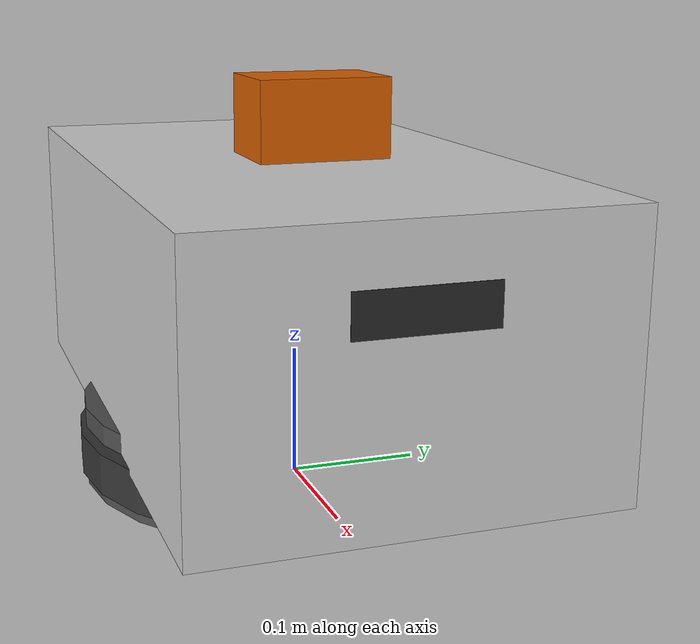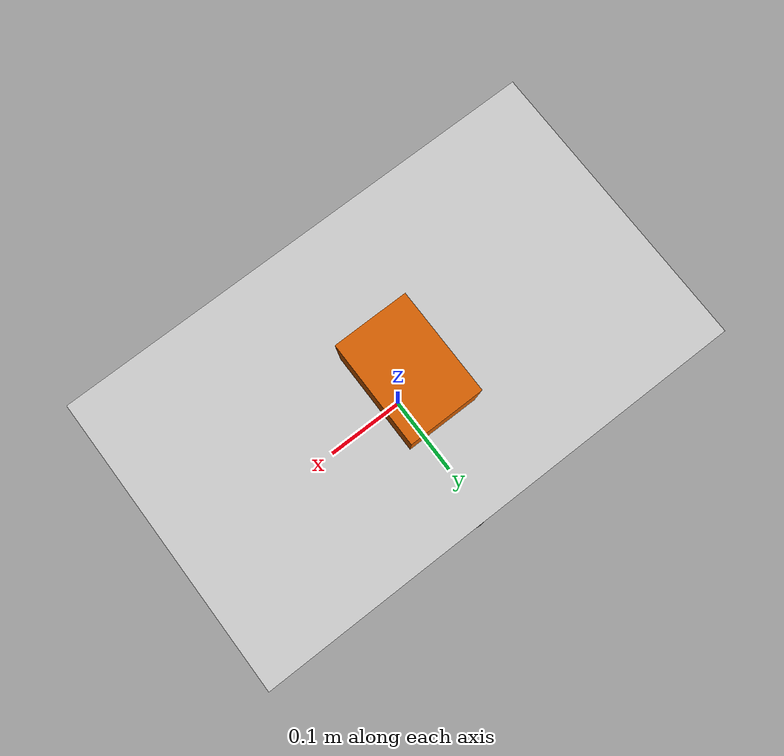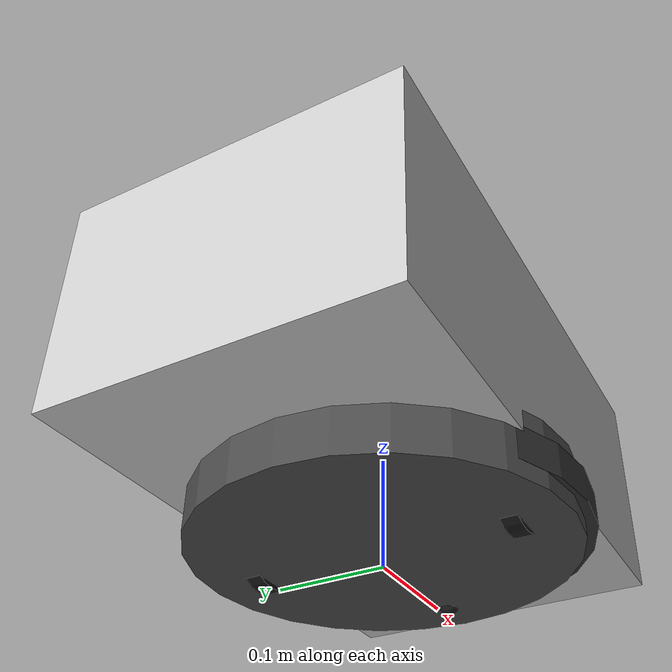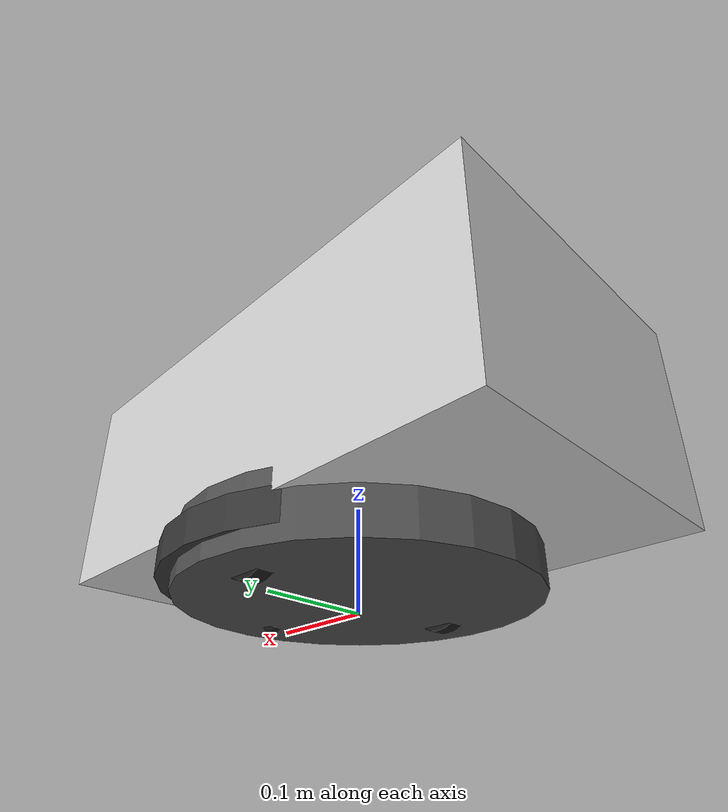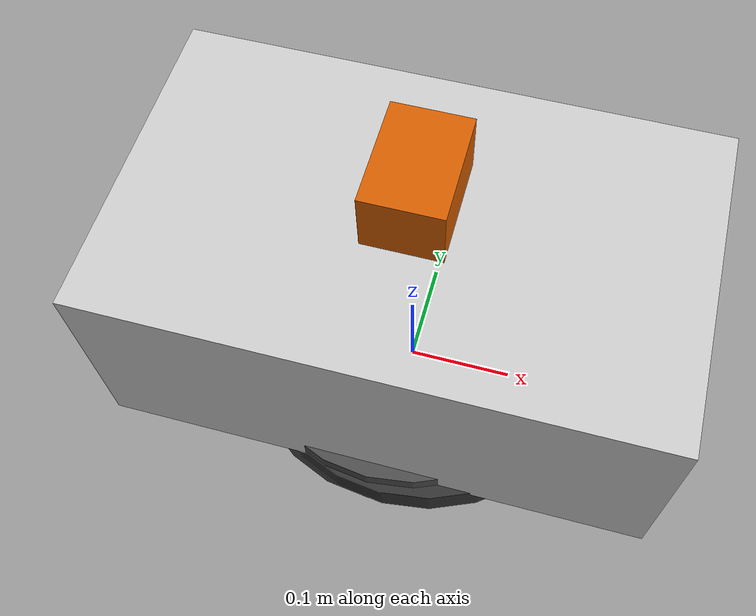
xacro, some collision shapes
<?xml version="1.0" ?>
<robot name="turtlebot4" xmlns:xacro="http://ros.org/wiki/xacro">
  <xacro:include filename="$(find nav2_minimal_tb4_description)/urdf/icreate/create3.urdf.xacro" />
  <xacro:include filename="$(find nav2_minimal_tb4_description)/urdf/sensors/rplidar.urdf.xacro" />
  <xacro:include filename="$(find nav2_minimal_tb4_description)/urdf/sensors/oakd.urdf.xacro" />
  <joint name="base_footprint_joint" type="fixed">
    <parent link="base_link"/>
    <child link="base_footprint"/>
    <origin xyz="0 0 0" rpy="0 0 0"/>
  </joint>
  <link name="base_footprint"/>

  <link name="chassis_link">
    <visual>
      <geometry>
        <box size="0.5 0.3 0.2"/>
      </geometry>
      <material name="light_grey">
        <color rgba="0.8 0.8 0.8 1.0"/>
      </material>
    </visual>
    <collision>
      <geometry>
        <box size="0.5 0.3 0.2"/>
      </geometry>
    </collision>
    <inertial>
      <mass value="15.0"/>
      <origin xyz="0 0 0" rpy="0 0 0"/>
      <inertia ixx="0.1625" ixy="0.0" ixz="0.0"
               iyy="0.3625" iyz="0.0"
               izz="0.425" />
    </inertial>

  </link>

  <joint name="chassis_joint" type="fixed">
    <parent link="base_link"/>
    <child link="chassis_link"/>
    <origin xyz="0 0 0.15" rpy="0 0 0"/>
  </joint>

  <xacro:rplidar name="rplidar" parent_link="chassis_link" gazebo="$(arg gazebo)">
    <origin xyz="0.0 0.0 0.15" rpy="0 0 0"/>
  </xacro:rplidar>

  <xacro:oakd model="pro" parent_link="chassis_link">
    <origin xyz="0.25 0.0 0.05" rpy="0 0 0"/>
  </xacro:oakd>
  </robot>

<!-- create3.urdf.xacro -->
<robot name="create3" xmlns:xacro="http://ros.org/wiki/xacro">
  <xacro:include filename="$(find nav2_minimal_tb4_description)/urdf/icreate/bumper.urdf.xacro" />
  <xacro:include filename="$(find nav2_minimal_tb4_description)/urdf/icreate/caster.urdf.xacro" />
  <xacro:include filename="$(find nav2_minimal_tb4_description)/urdf/icreate/common_properties.urdf.xacro"/>
  <xacro:include filename="$(find nav2_minimal_tb4_description)/urdf/icreate/sensors/imu.urdf.xacro" />
  <xacro:include filename="$(find nav2_minimal_tb4_description)/urdf/icreate/wheel.urdf.xacro" />

  <!-- Gazebo version -->
  <xacro:arg name="gazebo"                       default="ignition" />

  <!-- Namespace -->
  <xacro:arg name="namespace"                    default=""/>

  <!-- Mechanical properties -->
  <xacro:property name="body_z_offset"           value="${-2.5*cm2m}" />
  <!-- Raise collision up to avoid floor penetration when spawning (more clearance) -->
  <xacro:property name="body_collision_z_offset" value="${3*cm2m}" />
  <xacro:property name="body_mass"               value="2.300" />
  <xacro:property name="body_radius"             value="${16.4*cm2m}" />
  <xacro:property name="body_length"             value="${6*cm2m}" />

  <xacro:property name="body_cog_x_offset"       value="${2.28*cm2m}" />

  <xacro:property name="bumper_mass"             value="0.1" />
  <xacro:property name="bumper_offset_z"         value="${-2.5*cm2m}" />
  <xacro:property name="bumper_inertial_x"       value="${8*cm2m}" />
  <xacro:property name="bumper_inertial_z"       value="${2*cm2m}"/>

  <xacro:property name="wheel_height"            value="${-2.75*cm2m}" />
  <xacro:property name="distance_between_wheels" value="${23.3*cm2m}" />

  <xacro:property name="caster_position_x"       value="${12.5*cm2m}" />
  <xacro:property name="caster_position_z"       value="${-5.03*cm2m}" />

  <xacro:property name="wheel_drop_offset_z"     value="${3.5*mm2m}"/>
  <xacro:property name="wheel_drop_z"            value="${wheel_height + wheel_drop_offset_z}"/>

  <xacro:property name="base_link_z_offset"     value="${6.42*cm2m}"/>

  <!-- Create 3 base definition-->
  <link name="base_link">
    <visual>
      <origin xyz="0 0 ${body_z_offset + base_link_z_offset}" rpy="0 0 0"/>
      <geometry>
        <cylinder length="${body_length}" radius="${body_radius}"/>
      </geometry>
      <material name="darkgrey">
        <color rgba="0.3 0.3 0.3 1"/>
      </material>
    </visual>
    <collision name="create3_base_collision">
      <origin xyz="0 0 ${body_z_offset + body_collision_z_offset  + base_link_z_offset}" rpy="0 0 0"/>
      <geometry>
        <cylinder length="${body_length}" radius="${body_radius}"/>
      </geometry>
    </collision>
    <xacro:inertial_cylinder_with_pose mass="${body_mass}" radius="${body_radius}" length="${body_length}">
      <origin xyz="${body_cog_x_offset} 0 ${body_collision_z_offset + base_link_z_offset}"/>
    </xacro:inertial_cylinder_with_pose>
  </link>

  <gazebo reference="base_link">
    <xacro:material_darkgray/>
  </gazebo>

  <!-- Bumper -->
  <xacro:bumper
      gazebo="$(arg gazebo)"
      namespace="$(arg namespace)"
      visual_mesh="package://nav2_minimal_tb4_description/meshes/bumper_visual.dae"
      collision_mesh="package://nav2_minimal_tb4_description/meshes/bumper_collision.dae">
    <origin xyz="0 0 ${bumper_offset_z  + base_link_z_offset}"/>
    <inertial>
      <origin xyz="${bumper_inertial_x} 0 ${bumper_inertial_z}"/>
      <mass value="${bumper_mass}"/>
      <inertia ixx="0.0013483753405" ixy="0.0000000454352" ixz="0.0000014434849"
               iyy="0.0002521736852" iyz="-0.0000000006721" izz="0.0015442525386"/>
    </inertial>
  </xacro:bumper>

  <!-- Wheels with mechanical wheel drop -->
  <xacro:wheel name="left" gazebo="$(arg gazebo)">
    <origin xyz="0 ${distance_between_wheels/2} ${wheel_drop_z  + base_link_z_offset}" rpy="${-pi/2} 0 0"/>
  </xacro:wheel>

  <xacro:wheel name="right" gazebo="$(arg gazebo)">
    <origin xyz="0 ${-distance_between_wheels/2} ${wheel_drop_z  + base_link_z_offset}" rpy="${-pi/2} 0 0"/>
  </xacro:wheel>

  <!-- Caster wheel -->
  <xacro:caster name="front_caster" parent_link="base_link">
    <origin xyz="${caster_position_x} 0 ${caster_position_z  + base_link_z_offset}" rpy="${-pi/2} 0 0"/>
  </xacro:caster>

  <!-- IMU -->
  <xacro:imu_sensor gazebo="$(arg gazebo)" namespace="$(arg namespace)">
    <origin xyz="0.050613 0.043673 ${0.0202 + base_link_z_offset}"/>
  </xacro:imu_sensor>

  <gazebo>
      <plugin
        filename="gz-sim-diff-drive-system"
        name="gz::sim::systems::DiffDrive">
        <left_joint>left_wheel_joint</left_joint>
        <right_joint>right_wheel_joint</right_joint>
        <wheel_separation>0.233</wheel_separation>
        <wheel_radius>0.03575</wheel_radius>
        <max_linear_acceleration>2</max_linear_acceleration>
        <min_linear_acceleration>-2</min_linear_acceleration>
        <max_angular_acceleration>3</max_angular_acceleration>
        <min_angular_acceleration>-3</min_angular_acceleration>
        <max_linear_velocity>0.5</max_linear_velocity>
        <min_linear_velocity>-0.5</min_linear_velocity>
        <max_angular_velocity>2.0</max_angular_velocity>
        <min_angular_velocity>-2.0</min_angular_velocity>
        <topic>$(arg namespace)/cmd_vel</topic>
        <odom_topic>$(arg namespace)/odom</odom_topic>
        <tf_topic>$(arg namespace)/tf</tf_topic>
        <frame_id>odom</frame_id>
        <child_frame_id>base_link</child_frame_id>
        <odom_publish_frequency>30</odom_publish_frequency>
      </plugin>

      <plugin
        filename="gz-sim-joint-state-publisher-system"
        name="gz::sim::systems::JointStatePublisher">
        <joint_name>left_wheel_joint</joint_name>
        <joint_name>right_wheel_joint</joint_name>
        <topic>$(arg namespace)/joint_states</topic>
        <update_rate>30</update_rate>
      </plugin>
  </gazebo>

</robot>

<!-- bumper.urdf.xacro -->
<robot xmlns:xacro="http://ros.org/wiki/xacro">

<!-- The robot has a bumper with 5 contact sensors. The center one is
functional, while the 4 remaining ones are created as dummy links. -->
<xacro:macro name="dummy_bumper_zone" params="name parent_link:=base_link *origin">
  <xacro:property name="link_name" value="${name}"/>
  <xacro:property name="joint_name" value="${name}_joint"/>

  <joint name="${joint_name}" type="fixed">
    <parent link="${parent_link}"/>
    <child link="${link_name}"/>
    <xacro:insert_block name="origin"/>
  </joint>
  <link name="${link_name}"/>
</xacro:macro>

<xacro:macro name="bumper" params="name:=bumper namespace parent_link:=base_link update_rate:=62.0 gazebo visual_mesh collision_mesh
  *origin *inertial">
  <xacro:property name="link_name" value="${name}"/>
  <xacro:property name="joint_name" value="${name}_joint"/>

  <joint name="${joint_name}" type="fixed">
    <parent link="${parent_link}"/>
    <child link="${link_name}"/>
    <xacro:insert_block name="origin"/>
  </joint>
  <link name="${link_name}">
    <visual>
      <origin xyz="0.015 0 0" rpy="0 0 0"/>
      <geometry>
        <cylinder radius="0.17" length="0.03"/>
      </geometry>
      <material name="darkgrey">
        <color rgba="0.2 0.2 0.2 1"/>
      </material>
    </visual>
    <collision>
      <origin xyz="0.015 0 0" rpy="0 0 0"/>
      <geometry>
        <cylinder radius="0.164" length="0.03"/>
      </geometry>
    </collision>
    <xacro:insert_block name="inertial"/>
  </link>

  <gazebo reference="${link_name}">
    <material>Gazebo/DarkGrey</material>
  </gazebo>

  <xacro:dummy_bumper_zone
      name="bump_front_center">
      <origin xyz="0.175 0 0.039" rpy="0 0 0"/>
  </xacro:dummy_bumper_zone>

  <xacro:dummy_bumper_zone
      name="bump_front_left">
      <origin xyz="0.02345 -0.0875 0.025" rpy="0 0 0.5235985"/>
  </xacro:dummy_bumper_zone>

  <xacro:dummy_bumper_zone
      name="bump_front_right">
      <origin xyz="0.02345 0.0875 0.025" rpy="0 0 -0.5235985"/>
  </xacro:dummy_bumper_zone>

  <xacro:dummy_bumper_zone
      name="bump_left">
      <origin xyz="0.0875 -0.15155 0.025" rpy="0 0 1.047193"/>
  </xacro:dummy_bumper_zone>

  <xacro:dummy_bumper_zone
      name="bump_right">
      <origin xyz="0.0875 0.15155 0.025" rpy="0 0 -1.047193"/>
  </xacro:dummy_bumper_zone>

</xacro:macro>

</robot>

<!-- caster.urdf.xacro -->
<robot xmlns:xacro="http://ros.org/wiki/xacro">

<xacro:macro name="caster" params="name parent_link *origin">
  <xacro:include filename="$(find nav2_minimal_tb4_description)/urdf/icreate/common_properties.urdf.xacro"/>

  <xacro:property name="radius" value="${1*cm2m}" />
  <xacro:property name="mass"   value="0.01"/>

  <joint name="${name}_joint" type="fixed">
    <parent link="${parent_link}"/>
    <child link="${name}_link"/>
    <xacro:insert_block name="origin"/>
  </joint>
  <link name="${name}_link">
    <visual>
      <geometry>
        <sphere radius="${radius}"/>
      </geometry>
      <!-- Give black color to caster in Rviz -->
      <xacro:insert_block name="material_black"/>
    </visual>
    <collision>
      <geometry>
        <sphere radius="${radius}"/>
      </geometry>
    </collision>
    <xacro:inertial_sphere mass="${mass}" radius="${radius}"/>
  </link>

  <gazebo reference="${name}_joint">
    <preserveFixedJoint>true</preserveFixedJoint>
  </gazebo>

  <gazebo reference="${name}_link">
    <material>Gazebo/DarkGrey</material>
    <mu1>0.0</mu1>
    <mu2>0.0</mu2>
    <slip1>0.2</slip1>
    <slip2>0.2</slip2>
    <kp>200000.0</kp>
    <kd>5.0</kd>
  </gazebo>

</xacro:macro>
</robot>

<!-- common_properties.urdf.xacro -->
<!-- Various useful macros -->
<robot name="xacro_properties" xmlns:xacro="http://ros.org/wiki/xacro">

  <xacro:macro name="inertial_cuboid_with_pose" params="mass x y z *origin">
    <inertial>
      <mass value="${mass}" />
      <xacro:insert_block name="origin"/>
      <inertia ixx="${(1/12) * mass * (y*y + z*z)}" ixy="0.0" ixz="0.0"
        iyy="${(1/12) * mass * (x*x + z*z)}" iyz="0.0"
        izz="${(1/12) * mass * (x*x + y*y)}" />
    </inertial>
  </xacro:macro>

  <xacro:macro name="inertial_cuboid" params="mass x y z">
    <xacro:inertial_cuboid_with_pose mass="${mass}" x="${x}" y="${y}" z="${z}">
      <origin xyz="0 0 0" />
    </xacro:inertial_cuboid_with_pose>
  </xacro:macro>

  <xacro:macro name="inertial_cylinder_with_pose" params="mass radius length *origin">
    <inertial>
      <xacro:insert_block name="origin"/>
      <mass value="${mass}" />
      <inertia ixx="${(1/12) * mass * (3*radius*radius + length*length)}" ixy="0.0" ixz="0.0"
        iyy="${(1/12) * mass * (3*radius*radius + length*length)}" iyz="0.0"
        izz="${(1/2) * mass * (radius*radius)}" />
    </inertial>
  </xacro:macro>

  <xacro:macro name="inertial_cylinder" params="mass radius length">
    <xacro:inertial_cylinder_with_pose mass="${mass}" radius="${radius}" length="${length}">
      <origin xyz="0 0 0" />
    </xacro:inertial_cylinder_with_pose>
  </xacro:macro>

  <xacro:macro name="inertial_sphere" params="mass radius">
    <inertial>
      <mass value="${mass}" />
      <inertia ixx="${(2/5) * mass * radius * radius}" ixy="0.0" ixz="0.0"
	             iyy="${(2/5) * mass * radius * radius}" iyz="0.0"
	             izz="${(2/5) * mass * radius * radius}" />
    </inertial>
  </xacro:macro>

  <xacro:macro name="inertial_dummy">
    <xacro:inertial_cuboid mass="0.01" x="0.01" y="0.01" z="0.01"/>
  </xacro:macro>

  <xacro:macro name="ray_sensor"
    params="sensor_name gazebo update_rate visualize
            h_samples h_res h_min_angle h_max_angle
            r_min r_max r_res namespace:='' *plugin">
    <sensor name="${sensor_name}" type="gpu_lidar">
      <update_rate>${update_rate}</update_rate>
      <visualize>${visualize}</visualize>
      <always_on>true</always_on>
      <gz_frame_id>${sensor_name}_link</gz_frame_id>
      <topic>${namespace}/scan</topic>
      <lidar>
        <scan>
          <horizontal>
            <samples>${h_samples}</samples>
            <resolution>${h_res}</resolution>
            <min_angle>${h_min_angle}</min_angle>
            <max_angle>${h_max_angle}</max_angle>
          </horizontal>
        </scan>
        <range>
          <min>${r_min}</min>
          <max>${r_max}</max>
          <resolution>${r_res}</resolution>
        </range>
      </lidar>
    </sensor>
  </xacro:macro>

  <!-- Conversion macros -->
  <xacro:property name="cm2m"    value="${1/100.0}"/>
  <xacro:property name="mm2m"    value="${1/1000.0}"/>
  <xacro:property name="in2m"    value="0.0254"/>
  <xacro:property name="deg2rad" value="${pi/180.0}"/>

  <!-- Material colors -->
  <xacro:property name="material_black">
    <material name="black">
      <color rgba="0.1 0.1 0.1 1"/>
    </material>
  </xacro:property>

  <!-- Material macros -->
  <xacro:macro name="material_black">
    <visual>
      <material>
        <diffuse>0 0 0 1</diffuse>
        <specular>${80/255} ${80/255} ${80/255} 1</specular>
        <emissive>0 0 0 1</emissive>
      </material>
    </visual>
  </xacro:macro>

  <xacro:macro name="material_darkgray">
    <visual>
      <material>
        <diffuse>${3/255} ${3/255} ${3/255} 1</diffuse>
        <specular>0 0 0 1</specular>
        <emissive>0 0 0 1</emissive>
      </material>
    </visual>
  </xacro:macro>

</robot>

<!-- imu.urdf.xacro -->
<robot xmlns:xacro="http://ros.org/wiki/xacro">

<xacro:macro name="imu_sensor" params="name:=imu gazebo namespace parent:=base_link update_rate:=200 *origin">

  <joint name="${name}_joint" type="fixed">
    <xacro:insert_block name="origin"/>
    <parent link="${parent}"/>
    <child link="${name}_link"/>
  </joint>

  <link name="${name}_link">
      <xacro:inertial_dummy />
  </link>

  <gazebo reference="${name}_link">
    <sensor type="imu" name="${name}">
      <always_on>true</always_on>
      <update_rate>${update_rate}</update_rate>
      <topic>${namespace}/imu</topic>
      <imu>
        <angular_velocity>
          <x>
            <noise type="gaussian">
              <mean>0.0</mean>
              <stddev>0.0</stddev>
            </noise>
          </x>
          <y>
            <noise type="gaussian">
              <mean>0.0</mean>
              <stddev>0.0</stddev>
            </noise>
          </y>
          <z>
            <noise type="gaussian">
              <mean>0.0</mean>
              <stddev>0.0</stddev>
            </noise>
          </z>
        </angular_velocity>
        <linear_acceleration>
          <x>
            <noise type="gaussian">
              <mean>0.0</mean>
              <stddev>0.0</stddev>
            </noise>
          </x>
          <y>
            <noise type="gaussian">
              <mean>0.0</mean>
              <stddev>0.0</stddev>
            </noise>
          </y>
          <z>
            <noise type="gaussian">
              <mean>0.0</mean>
              <stddev>0.0</stddev>
            </noise>
          </z>
        </linear_acceleration>
      </imu>
    </sensor>
  </gazebo>

  <gazebo reference="${name}_joint">
    <preserveFixedJoint>true</preserveFixedJoint>
  </gazebo>

</xacro:macro>
</robot>

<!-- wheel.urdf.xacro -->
<robot xmlns:xacro="http://ros.org/wiki/xacro">

<xacro:macro name="wheel" params="name gazebo parent_link:=base_link *origin">

  <xacro:property name="mass"   value="0.2" />
  <xacro:property name="radius" value="${3.575*cm2m}" />
  <xacro:property name="width"  value="${1.5*cm2m}" />

  <xacro:property name="wheel_link_name"  value="${name}_wheel"/>
  <xacro:property name="wheel_joint_name" value="${wheel_link_name}_joint"/>

  <joint name="${wheel_joint_name}" type="continuous">
    <parent link="${parent_link}"/>
    <child link="${wheel_link_name}"/>
    <xacro:insert_block name="origin"/>
    <axis xyz="0 0 1"/>
  </joint>

  <link name="${wheel_link_name}">
    <visual>
      <geometry>
        <cylinder length="${width}" radius="${radius}"/>
      </geometry>
      <!-- Give black color to wheels in Rviz -->
      <xacro:insert_block name="material_black"/>
    </visual>
    <collision>
      <geometry>
        <cylinder length="${width}" radius="${radius}"/>
      </geometry>
    </collision>
    <xacro:inertial_cylinder mass="${mass}" radius="${radius}"
      length="${width}" />
  </link>

  <gazebo reference="${wheel_link_name}">
    <mu1>0.9</mu1>
    <mu2>0.9</mu2>
    <slip1>0.1</slip1>
    <slip2>0.1</slip2>
    <kp>200000.0</kp>
    <kd>20.0</kd>
    <minDepth>0.001</minDepth>
    <maxVel>1.0</maxVel>
    <material>Gazebo/DarkGrey</material>
  </gazebo>

</xacro:macro>
</robot>

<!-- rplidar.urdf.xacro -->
<robot xmlns:xacro="http://ros.org/wiki/xacro">

<xacro:macro name="rplidar" params="name parent_link gazebo namespace:='' *origin">
  <xacro:include filename="$(find nav2_minimal_tb4_description)/urdf/icreate/common_properties.urdf.xacro"/>

  <xacro:property name="mass"       value="0.17"/>
  <xacro:property name="length_x"   value="${7.1*cm2m}" />
  <xacro:property name="length_y"   value="${10*cm2m}" />
  <xacro:property name="length_z"   value="${6*cm2m}" />

  <xacro:property name="collision_x_offset"       value="${0*cm2m}" />
  <xacro:property name="collision_y_offset"       value="${1.3*cm2m}" />
  <xacro:property name="collision_z_offset"       value="${-1.9*cm2m}" />

  <joint name="${name}_joint" type="fixed">
    <parent link="${parent_link}"/>
    <child link="${name}_link"/>
    <xacro:insert_block name="origin"/>
  </joint>

  <link name="${name}_link">
    <visual>
      <geometry>
        <mesh filename="package://nav2_minimal_tb4_description/meshes/rplidar.dae" scale="1 1 1" />
      </geometry>
    </visual>
    <collision>
      <origin xyz="${collision_x_offset} ${collision_y_offset} ${collision_z_offset}"/>
      <geometry>
        <box size="${length_x} ${length_y} ${length_z}"/>
      </geometry>
    </collision>
    <xacro:inertial_cuboid mass="0.17" x="${length_x}" y="${length_y}" z="${length_z}"/>
  </link>

  <gazebo reference="${name}_link">
    <xacro:ray_sensor sensor_name="${name}" gazebo="${gazebo}"
                  update_rate="10.0" visualize="false"
                  h_samples="360" h_res="1.0" h_min_angle="0.000" h_max_angle="6.280000"
                  r_min="0.164" r_max="20.0" r_res="0.01" namespace="${namespace}">
                  <plugin name="dummy" filename="dummyfile"></plugin>
    </xacro:ray_sensor>
    <xacro:material_darkgray/>
  </gazebo>

  <gazebo reference="${name}_joint">
    <preserveFixedJoint>true</preserveFixedJoint>
  </gazebo>

</xacro:macro>
</robot>

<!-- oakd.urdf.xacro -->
<robot xmlns:xacro="http://ros.org/wiki/xacro">

<xacro:macro name="oakd" params="name:=oakd parent_link *origin model:=pro namespace:=''">
  <xacro:include filename="$(find nav2_minimal_tb4_description)/urdf/icreate/common_properties.urdf.xacro"/>

  <xacro:property name="mass"       value="0.061"/>
  <xacro:property name="baseline" value="0.075" />
  <xacro:property name="M_PI"     value="3.1415926535897931" />

  <xacro:property name="collision_length_x"   value="${2.25*cm2m}" />
  <xacro:property name="collision_length_y"   value="${9.7*cm2m}" />
  <xacro:property name="collision_length_z"   value="${3*cm2m}" />

  <xacro:property name="collision_offset_x"   value="${-1.1*cm2m}" />
  <xacro:property name="collision_offset_y"   value="${0*cm2m}" />
  <xacro:property name="collision_offset_z"   value="${-0.5*cm2m}" />

  <xacro:property name="base_frame" value="${name}_link"/>

  <!-- Base frame -->
  <joint name="${name}_joint" type="fixed">
    <parent link="${parent_link}"/>
    <child link="${base_frame}"/>
    <xacro:insert_block name="origin"/>
  </joint>

  <link name="${base_frame}">
    <visual>
      <origin xyz="${collision_offset_x} ${collision_offset_y} ${collision_offset_z}" rpy="0 0 0"/>
      <geometry>
        <box size="${collision_length_x} ${collision_length_y} ${collision_length_z}"/>
      </geometry>
      <material name="darkgrey">
        <color rgba="0.15 0.15 0.15 1"/>
      </material>
    </visual>
    <collision>
      <origin xyz="${collision_offset_x} ${collision_offset_y} ${collision_offset_z}"/>
      <geometry>
        <box size="${collision_length_x} ${collision_length_y} ${collision_length_z}"/>
      </geometry>
    </collision>
    <inertial>
      <mass value="${mass}"/>
      <inertia ixx="0.00000202475" ixy="0.0" ixz="0.0"
	             iyy="0.00001527320" iyz="0.0" izz="0.00001605536" />
    </inertial>
  </link>

  <gazebo reference="${base_frame}">
    <material>Gazebo/DarkGrey</material>
  </gazebo>

  <!-- RGB Camera -->
  <link name="${name}_rgb_camera_frame">
    <xacro:inertial_dummy/>
  </link>

  <joint name="${name}_rgb_camera_joint" type="fixed">
      <parent link="${base_frame}"/>
      <child link="${name}_rgb_camera_frame"/>
      <origin xyz="0 0 0" rpy="0 0 0" />
  </joint>

  <link name="${name}_rgb_camera_optical_frame">
    <xacro:inertial_dummy/>
  </link>

  <joint name="${name}_rgb_camera_optical_joint" type="fixed">
      <origin xyz="0 0 0" rpy="-${M_PI/2} 0.0 -${M_PI/2}"/>
      <parent link="${name}_rgb_camera_frame"/>
      <child link="${name}_rgb_camera_optical_frame"/>
  </joint>

  <!-- Left Camera -->
  <link name="${name}_left_camera_frame">
    <xacro:inertial_dummy/>
  </link>

  <joint name="${name}_left_camera_joint" type="fixed">
      <parent link="${base_frame}"/>
      <child link="${name}_left_camera_frame"/>
      <origin xyz="0 ${baseline/2} 0" rpy="0 0 0" />
  </joint>

  <link name="${name}_left_camera_optical_frame">
    <xacro:inertial_dummy/>
  </link>

  <joint name="${name}_left_camera_optical_joint" type="fixed">
      <origin xyz="0 0 0" rpy="-${M_PI/2} 0.0 -${M_PI/2}"/>
      <parent link="${name}_left_camera_frame"/>
      <child link="${name}_left_camera_optical_frame"/>
  </joint>

  <!-- Right Camera -->
  <link name="${name}_right_camera_frame">
    <xacro:inertial_dummy/>
  </link>

  <joint name="${name}_right_camera_joint" type="fixed">
      <parent link="${base_frame}"/>
      <child link="${name}_right_camera_frame"/>
      <origin xyz="0 -${baseline/2} 0" rpy="0 0 0" />
  </joint>

  <link name="${name}_right_camera_optical_frame">
    <xacro:inertial_dummy/>
  </link>

  <joint name="${name}_right_camera_optical_joint" type="fixed">
      <origin xyz="0 0 0" rpy="-${M_PI/2} 0.0 -${M_PI/2}"/>
      <parent link="${name}_right_camera_frame"/>
      <child link="${name}_right_camera_optical_frame"/>
  </joint>

  <!-- IMU -->
  <link name="${name}_imu_frame">
    <xacro:inertial_dummy/>
  </link>

  <joint name="${name}_imu_joint" type="fixed">
      <parent link="${base_frame}"/>
      <child link="${name}_imu_frame"/>
      <origin xyz="0 0 0" rpy="-${M_PI/2} 0 -${M_PI/2}" />
  </joint>

  <!-- Gazebo links and joints -->
  <gazebo reference="${name}_rgb_camera_frame">
    <sensor name="rgbd_camera" type="rgbd_camera">
      <always_on>1</always_on>
      <camera>
        <horizontal_fov>1.25</horizontal_fov>
        <image>
          <width>320</width>
          <height>240</height>
        </image>
        <clip>
          <near>0.3</near>
          <far>100</far>
        </clip>
        <optical_frame_id>${name}_rgb_camera_optical_frame</optical_frame_id>
      </camera>
      <update_rate>10</update_rate>
      <visualize>false</visualize>
      <topic>${namespace}/rgbd_camera</topic>
    </sensor>
    <xacro:material_darkgray/>
  </gazebo>

  <gazebo reference="${name}_joint">
    <preserveFixedJoint>true</preserveFixedJoint>
  </gazebo>

  <gazebo reference="${name}_rgb_camera_joint">
    <preserveFixedJoint>true</preserveFixedJoint>
  </gazebo>

  <gazebo reference="${name}_rgb_camera_optical_joint">
    <preserveFixedJoint>true</preserveFixedJoint>
  </gazebo>

  <gazebo reference="${name}_left_camera_joint">
    <preserveFixedJoint>true</preserveFixedJoint>
  </gazebo>

  <gazebo reference="${name}_left_camera_optical_joint">
    <preserveFixedJoint>true</preserveFixedJoint>
  </gazebo>

  <gazebo reference="${name}_right_camera_joint">
    <preserveFixedJoint>true</preserveFixedJoint>
  </gazebo>

  <gazebo reference="${name}_right_camera_optical_joint">
    <preserveFixedJoint>true</preserveFixedJoint>
  </gazebo>

  <gazebo reference="${name}_imu_joint">
    <preserveFixedJoint>true</preserveFixedJoint>
  </gazebo>

</xacro:macro>
</robot>
